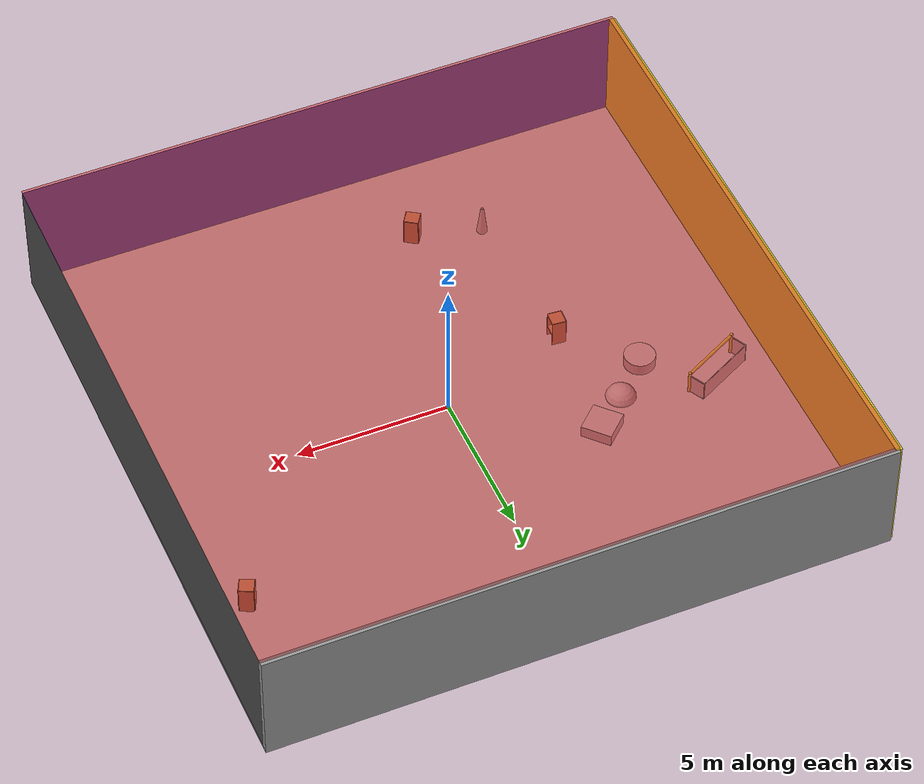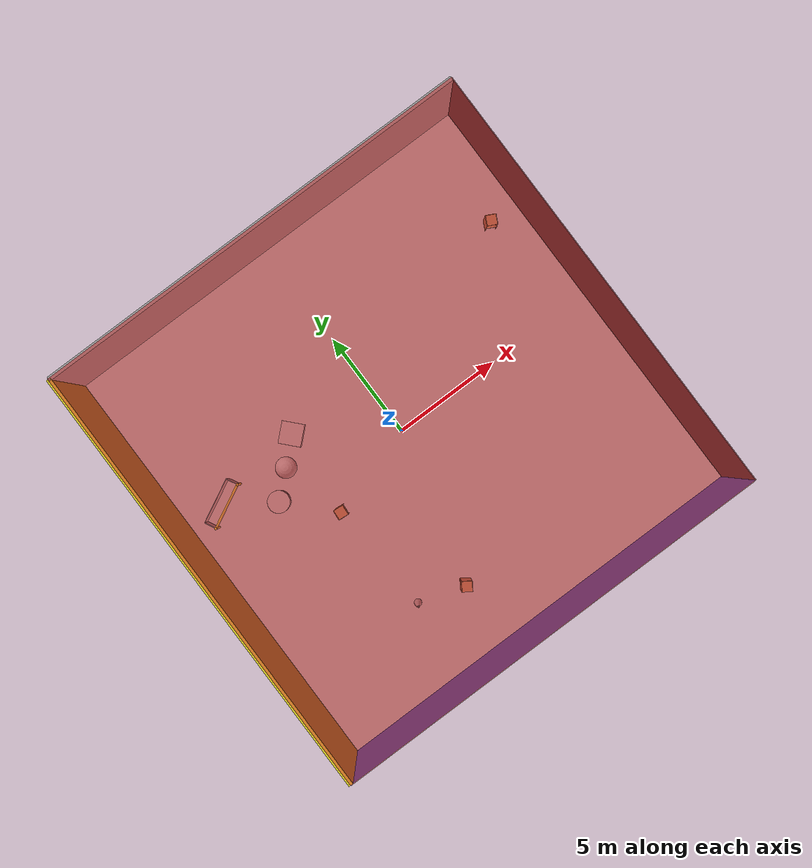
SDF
<sdf version="1.4">
 <world name="default">
  <physics type="ode">
   <max_step_size>0.001</max_step_size>
   <real_time_factor>1</real_time_factor>
   <real_time_update_rate>1000</real_time_update_rate>
   <gravity>0 0 -9.8</gravity>
  </physics>
  <scene><ambient>0.4 0.4 0.4 1</ambient><background>0.7 0.7 0.7 1</background><shadows>1</shadows></scene>
  <model name="Surrounding">
   <static>1</static>
   <link name="Ceiling">
    <collision name="Ceiling_Collision"><geometry><box><size>20 20 0.1</size></box></geometry></collision>
    <visual name="Ceiling_Visual">
     <geometry><box><size>20 20 0.1</size></box></geometry>
     <material>
      <script><uri>file://media/materials/scripts/gazebo.material</uri><name>Gazebo/RedTransparent</name></script>
     </material>
    </visual>
    <pose>0 0 4.05 0 0 0</pose>
   </link>
   <link name="Wall_South">
    <collision name="Wall_South_Collision">
     <geometry><box><size>20 0 4</size></box></geometry>
     <pose>0 0 2 0 -0 0</pose>
    </collision>
    <visual name="Wall_South_Visual">
     <pose>0 0 2 0 -0 0</pose>
     <geometry><box><size>20 0 4</size></box></geometry>
     <material>
      <script><uri>file://media/materials/scripts/gazebo.material</uri><name>Gazebo/BlueGlow</name></script>
     </material>
    </visual>
    <velocity_decay><linear>0</linear><angular>0</angular></velocity_decay>
    <pose>0 -10 0 0 -0 0</pose>
   </link>
   <link name="Wall_East">
    <collision name="Wall_21_Collision">
     <geometry><box><size>20 0 4</size></box></geometry>
     <pose>0 0 2 0 -0 0</pose>
    </collision>
    <visual name="Wall_21_Visual">
     <pose>0 0 2 0 -0 0</pose>
     <geometry><box><size>20 0 4</size></box></geometry>
     <material>
      <script><uri>file://media/materials/scripts/gazebo.material</uri><name>Gazebo/DarkGrey</name></script>
     </material>
    </visual>
    <velocity_decay><linear>0</linear><angular>0</angular></velocity_decay>
    <pose>10 0 0 0 -0 1.5708</pose>
   </link>
   <link name="Wall_North">
    <collision name="Wall_22_Collision">
     <geometry><box><size>20 0.2 4</size></box></geometry>
     <pose>0 0 2 0 -0 0</pose>
    </collision>
    <visual name="Wall_22_Visual">
     <pose>0 0 2 0 -0 0</pose>
     <geometry><box><size>20 0.2 4</size></box></geometry>
     <material>
      <script><uri>file://media/materials/scripts/gazebo.material</uri><name>Gazebo/GreyGradientSky</name></script>
     </material>
    </visual>
    <velocity_decay><linear>0</linear><angular>0</angular></velocity_decay>
    <pose>0 10 0 0 -0 0</pose>
   </link>
   <link name="Wall_West">
    <collision name="Wall_23_Collision">
     <geometry><box><size>20 0.2 4</size></box></geometry>
     <pose>0 0 2 0 -0 0</pose>
    </collision>
    <visual name="Wall_23_Visual">
     <pose>0 0 2 0 -0 0</pose>
     <geometry><box><size>20 0.2 4</size></box></geometry>
     <material>
      <script><uri>file://media/materials/scripts/gazebo.material</uri><name>Gazebo/Yellow</name></script>
     </material>
    </visual>
    <velocity_decay><linear>0</linear><angular>0</angular></velocity_decay>
    <pose>-10 0 0 0 0 -1.5708</pose>
   </link>
   <link name="Ground_link">
    <collision name="collision">
     <pose>0 0 .05 0 -0 0</pose>
     <geometry><box><size>20 20 0.1</size></box></geometry>
    </collision>
    <visual name="visual">
     <pose>0 0 .05 0 -0 0</pose>
     <geometry><box><size>20 20 0.1</size></box></geometry>
     <material>
      <script><uri>file://media/materials/scripts/gazebo.material</uri><name>Gazebo/CloudySky</name></script>
     </material>
    </visual>
   </link>
   <static>1</static>
  </model>
  <spherical_coordinates>
   <surface_model>EARTH_WGS84</surface_model>
   <latitude_deg>0</latitude_deg>
   <longitude_deg>0</longitude_deg>
   <elevation>0</elevation>
   <heading_deg>0</heading_deg>
  </spherical_coordinates>
  <light name="lightball_0" type="diffuse">
   <diffuse>0.8 0.8 0.8 1</diffuse>
   <specular>0.2 0.2 0.2 1</specular>
   <attenuation>
    <range>100</range>
    <constant>0.7</constant>
    <linear>0.01</linear>
    <quadratic>0.001</quadratic>
   </attenuation>
   <direction>-0.5 0.1 -0.9</direction>
   <pose>-4.42573420969 -2.58332447224 0.933193934256 0 0 0</pose>
  </light>
  <light name="lightball_1" type="diffuse">
   <diffuse>0.8 0.8 0.8 1</diffuse>
   <specular>0.2 0.2 0.2 1</specular>
   <attenuation>
    <range>100</range>
    <constant>0.7</constant>
    <linear>0.01</linear>
    <quadratic>0.001</quadratic>
   </attenuation>
   <direction>-0.5 0.1 -0.9</direction>
   <pose>5.64536716819 -6.59838444778 2.12609640926 0 0 0</pose>
  </light>
  <light name="lightball_2" type="diffuse">
   <diffuse>0.8 0.8 0.8 1</diffuse>
   <specular>0.2 0.2 0.2 1</specular>
   <attenuation>
    <range>100</range>
    <constant>0.7</constant>
    <linear>0.01</linear>
    <quadratic>0.001</quadratic>
   </attenuation>
   <direction>-0.5 0.1 -0.9</direction>
   <pose>-4.18401473984 5.30725094333 1.11854161029 0 0 0</pose>
  </light>
  <light name="lightball_3" type="diffuse">
   <diffuse>0.8 0.8 0.8 1</diffuse>
   <specular>0.2 0.2 0.2 1</specular>
   <attenuation>
    <range>100</range>
    <constant>0.7</constant>
    <linear>0.01</linear>
    <quadratic>0.001</quadratic>
   </attenuation>
   <direction>-0.5 0.1 -0.9</direction>
   <pose>-6.09806733871 3.29135727715 3.84596925864 0 0 0</pose>
  </light>
  <light name="lightball_4" type="diffuse">
   <diffuse>0.8 0.8 0.8 1</diffuse>
   <specular>0.2 0.2 0.2 1</specular>
   <attenuation>
    <range>100</range>
    <constant>0.7</constant>
    <linear>0.01</linear>
    <quadratic>0.001</quadratic>
   </attenuation>
   <direction>-0.5 0.1 -0.9</direction>
   <pose>-8.56764870088 -0.0492427255694 2.83140518912 0 0 0</pose>
  </light>
  <light name="lightball_5" type="diffuse">
   <diffuse>0.8 0.8 0.8 1</diffuse>
   <specular>0.2 0.2 0.2 1</specular>
   <attenuation>
    <range>100</range>
    <constant>0.7</constant>
    <linear>0.01</linear>
    <quadratic>0.001</quadratic>
   </attenuation>
   <direction>-0.5 0.1 -0.9</direction>
   <pose>4.17002057996 1.33242370422 2.7853923668 0 0 0</pose>
  </light>
  <light name="lightball_6" type="diffuse">
   <diffuse>0.8 0.8 0.8 1</diffuse>
   <specular>0.2 0.2 0.2 1</specular>
   <attenuation>
    <range>100</range>
    <constant>0.7</constant>
    <linear>0.01</linear>
    <quadratic>0.001</quadratic>
   </attenuation>
   <direction>-0.5 0.1 -0.9</direction>
   <pose>3.09581940174 -6.53883873264 1.44379729418 0 0 0</pose>
  </light>
  <light name="lightball_7" type="diffuse">
   <diffuse>0.8 0.8 0.8 1</diffuse>
   <specular>0.2 0.2 0.2 1</specular>
   <attenuation>
    <range>100</range>
    <constant>0.7</constant>
    <linear>0.01</linear>
    <quadratic>0.001</quadratic>
   </attenuation>
   <direction>-0.5 0.1 -0.9</direction>
   <pose>-4.3343946451 -9.54210930521 1.47733185597 0 0 0</pose>
  </light>
  <light name="lightball_8" type="diffuse">
   <diffuse>0.8 0.8 0.8 1</diffuse>
   <specular>0.2 0.2 0.2 1</specular>
   <attenuation>
    <range>100</range>
    <constant>0.7</constant>
    <linear>0.01</linear>
    <quadratic>0.001</quadratic>
   </attenuation>
   <direction>-0.5 0.1 -0.9</direction>
   <pose>9.73303894715 -5.15567752874 3.23118503999 0 0 0</pose>
  </light>
  <light name="lightball_9" type="diffuse">
   <diffuse>0.8 0.8 0.8 1</diffuse>
   <specular>0.2 0.2 0.2 1</specular>
   <attenuation>
    <range>100</range>
    <constant>0.7</constant>
    <linear>0.01</linear>
    <quadratic>0.001</quadratic>
   </attenuation>
   <direction>-0.5 0.1 -0.9</direction>
   <pose>8.46348234239 4.65603416786 2.01965094323 0 0 0</pose>
  </light>
  <include>
   <uri>model://robocup_3Dsim_goal</uri>
   <pose>-7.96060693654 1.90323158118 0 0 0 2.04477060856</pose>
  </include>
  <include>
   <uri>model://construction_cone</uri>
   <pose>-3.92250451859 -6.42713061443 0 0 0 3.01595874261</pose>
  </include>
  <include><uri>model://cabinet</uri><pose>-4.17707407987 -1.24165707489 0 0 0 3.06388977001</pose></include>
  <include>
   <uri>model://textured_shapes</uri>
   <pose>-5.00648218375 1.7558540004 0 0 0 2.31670300375</pose>
  </include>
  <include><uri>model://cabinet</uri><pose>-1.76109385792 -7.00532894999 0 0 0 0.988053843293</pose></include>
  <include><uri>model://cabinet</uri><pose>8.52779958771 4.92247360567 0 0 0 1.11737648549</pose></include>
 </world>
</sdf>

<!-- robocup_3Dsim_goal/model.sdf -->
<sdf version="1.5">
  <model name="robocup_3d_goal">
    <static>true</static>
    <link name="left_post">
      <pose>0 1.05 0.45 0 0 0</pose>
      <collision name="collision">
        <geometry>
          <cylinder>
            <radius>0.05</radius>
            <length>0.9</length>
          </cylinder>
        </geometry>
      </collision>
      <visual name="visual">
        <geometry>
          <cylinder>
            <radius>0.05</radius>
            <length>0.9</length>
          </cylinder>
        </geometry>
        <material>
          <script>
            <uri>file://media/materials/scripts/gazebo.material</uri>
            <name>Gazebo/ZincYellow</name>
          </script>
        </material>
      </visual>
    </link>
    <link name="left_support_horiz_lower">
      <pose>0.30 1.05 0.01 0 0 0</pose>
      <collision name="collision">
        <geometry>
          <box>
            <size>0.50 0.02 0.02</size>
          </box>
        </geometry>
      </collision>
      <visual name="visual">
        <geometry>
          <box>
            <size>0.50 0.02 0.02</size>
          </box>
        </geometry>
        <material>
          <script>
            <uri>file://media/materials/scripts/gazebo.material</uri>
            <name>Gazebo/White</name>
          </script>
        </material>
      </visual>
    </link>
    <link name="left_support_horiz_upper">
      <pose>0.30 1.05 0.79 0 0 0</pose>
      <collision name="collision">
        <geometry>
          <box>
            <size>0.50 0.02 0.02</size>
          </box>
        </geometry>
      </collision>
      <visual name="visual">
        <geometry>
          <box>
            <size>0.50 0.02 0.02</size>
          </box>
        </geometry>
        <material>
          <script>
            <uri>file://media/materials/scripts/gazebo.material</uri>
            <name>Gazebo/White</name>
          </script>
        </material>
      </visual>
    </link>
    <link name="left_support_vertical">
      <pose>0.56 1.05 0.4 0 1.5708 0</pose>
      <collision name="collision">
        <geometry>
          <box>
            <size>0.80 0.02 0.02</size>
          </box>
        </geometry>
      </collision>
      <visual name="visual">
        <geometry>
          <box>
            <size>0.80 0.02 0.02</size>
          </box>
        </geometry>
        <material>
          <script>
            <uri>file://media/materials/scripts/gazebo.material</uri>
            <name>Gazebo/White</name>
          </script>
        </material>
      </visual>
    </link>
    <link name="right_support_horiz_lower">
      <pose>0.30 -1.05 0.01 0 0 0</pose>
      <collision name="collision">
        <geometry>
          <box>
            <size>0.50 0.02 0.02</size>
          </box>
        </geometry>
      </collision>
      <visual name="visual">
        <geometry>
          <box>
            <size>0.50 0.02 0.02</size>
          </box>
        </geometry>
        <material>
          <script>
            <uri>file://media/materials/scripts/gazebo.material</uri>
            <name>Gazebo/White</name>
          </script>
        </material>
      </visual>
    </link>
    <link name="right_support_horiz_upper">
      <pose>0.30 -1.05 0.79 0 0 0</pose>
      <collision name="collision">
        <geometry>
          <box>
            <size>0.50 0.02 0.02</size>
          </box>
        </geometry>
      </collision>
      <visual name="visual">
        <geometry>
          <box>
            <size>0.50 0.02 0.02</size>
          </box>
        </geometry>
        <material>
          <script>
            <uri>file://media/materials/scripts/gazebo.material</uri>
            <name>Gazebo/White</name>
          </script>
        </material>
      </visual>
    </link>
    <link name="right_support_vertical">
      <pose>0.56 -1.05 0.4 0 1.5708 0</pose>
      <collision name="collision">
        <geometry>
          <box>
            <size>0.80 0.02 0.02</size>
          </box>
        </geometry>
      </collision>
      <visual name="visual">
        <geometry>
          <box>
            <size>0.80 0.02 0.02</size>
          </box>
        </geometry>
        <material>
          <script>
            <uri>file://media/materials/scripts/gazebo.material</uri>
            <name>Gazebo/White</name>
          </script>
        </material>
      </visual>
    </link>
    <link name="center_support_horiz_lower">
      <pose>0.56 0 0.01 0 1.5708 0</pose>
      <collision name="collision">
        <geometry>
          <box>
            <size>0.02 2.08 0.02</size>
          </box>
        </geometry>
      </collision>
      <visual name="visual">
        <geometry>
          <box>
            <size>0.02 2.08 0.02</size>
          </box>
        </geometry>
        <material>
          <script>
            <uri>file://media/materials/scripts/gazebo.material</uri>
            <name>Gazebo/White</name>
          </script>
        </material>
      </visual>
    </link>
    <link name="center_support_horiz_upper">
      <pose>0.56 0 0.79 0 1.5708 0</pose>
      <collision name="collision">
        <geometry>
          <box>
            <size>0.02 2.08 0.02</size>
          </box>
        </geometry>
      </collision>
      <visual name="visual">
        <geometry>
          <box>
            <size>0.02 2.08 0.02</size>
          </box>
        </geometry>
        <material>
          <script>
            <uri>file://media/materials/scripts/gazebo.material</uri>
            <name>Gazebo/White</name>
          </script>
        </material>
      </visual>
    </link>
    <link name="right_post">
      <pose>0 -1.05 0.45 0 0 0</pose>
      <collision name="collision">
        <geometry>
          <cylinder>
            <radius>0.05</radius>
            <length>0.9</length>
          </cylinder>
        </geometry>
      </collision>
      <visual name="visual">
        <geometry>
          <cylinder>
            <radius>0.05</radius>
            <length>0.9</length>
          </cylinder>
        </geometry>
        <material>
          <script>
            <uri>file://media/materials/scripts/gazebo.material</uri>
            <name>Gazebo/ZincYellow</name>
          </script>
        </material>
      </visual>
    </link>
    <link name="crossbar">
      <pose>0 0 0.85 1.57 1.57 0</pose>
      <collision name="collision">
        <geometry>
          <cylinder>
            <radius>0.05</radius>
            <length>2.0</length>
          </cylinder>
        </geometry>
      </collision>
      <visual name="visual">
        <geometry>
          <cylinder>
            <radius>0.05</radius>
            <length>2.0</length>
          </cylinder>
        </geometry>
        <material>
          <script>
            <uri>file://media/materials/scripts/gazebo.material</uri>
            <name>Gazebo/ZincYellow</name>
          </script>
        </material>
      </visual>
    </link>
    <link name="center_net">
      <pose>0.56 0 0.40 0 0 0</pose>
      <collision name="collision">
        <geometry>
          <box>
            <size>0.01 2.1 0.80</size>
          </box>
        </geometry>
      </collision>
      <visual name="visual">
        <geometry>
          <box>
            <size>0.01 2.1 0.80</size>
          </box>
        </geometry>
        <material>
          <script>
            <uri>model://../model_source/models/robocup09_spl_field/materials/scripts/</uri>
            <uri>model://../model_source/models/robocup09_spl_field/materials/textures/</uri>
            <name>RoboCup/Net</name>
          </script>
        </material>
      </visual>
    </link>
    <link name="left_net">
      <pose>0.30 1.05 0.40 0 0 0</pose>
      <collision name="collision">
        <geometry>
          <box>
            <size>0.50 0.01 0.76</size>
          </box>
        </geometry>
      </collision>
      <visual name="visual">
        <geometry>
          <box>
            <size>0.50 0.01 0.76</size>
          </box>
        </geometry>
        <material>
          <script>
            <uri>model://../model_source/models/robocup09_spl_field/materials/scripts/</uri>
            <uri>model://../model_source/models/robocup09_spl_field/materials/textures/</uri>
            <name>RoboCup/Net</name>
          </script>
        </material>
      </visual>
    </link>
    <link name="right_net">
      <pose>0.30 -1.05 0.40 0 0 0</pose>
      <collision name="collision">
        <geometry>
          <box>
            <size>0.50 0.01 0.76</size>
          </box>
        </geometry>
      </collision>
      <visual name="visual">
        <geometry>
          <box>
            <size>0.50 0.01 0.76</size>
          </box>
        </geometry>
        <material>
          <script>
            <uri>model://../model_source/models/robocup09_spl_field/materials/scripts/</uri>
            <uri>model://../model_source/models/robocup09_spl_field/materials/textures/</uri>
            <name>RoboCup/Net</name>
          </script>
        </material>
      </visual>
    </link>
  </model>
</sdf>

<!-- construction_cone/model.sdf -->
<sdf version="1.5">
  <model name="Construction Cone">
    <link name="link">
      <collision name="collision">
        <geometry>
          <mesh>
            <scale>10 10 10</scale>
            <uri>file://isr-testbed/construction_cone/meshes/construction_cone.dae</uri>
          </mesh>
        </geometry>
      </collision>
      <visual name="visual">
        <geometry>
          <mesh>
            <scale>10 10 10</scale>
            <uri>file://isr-testbed/construction_cone/meshes/construction_cone.dae</uri>
          </mesh>
        </geometry>
      </visual>
    </link>
  </model>
</sdf>

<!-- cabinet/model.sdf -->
<sdf version="1.5">
  <model name="cabinet">
    <static>true</static>
    <link name="cabinet_bottom_plate">
      <inertial>
        <pose>0 0 -1 0 0 0</pose>
        <inertia>
          <ixx>2.050000</ixx>
          <ixy>0</ixy>
          <ixz>0</ixz>
          <iyy>2.050000</iyy>
          <iyz>0</iyz>
          <izz>2.050000</izz>
        </inertia>
        <mass>25.000000</mass>
      </inertial>
      <collision name="cabinet_bottom_plate_geom">
        <pose>0 0 0.010000 0 0 0</pose>
        <geometry>
          <box>
            <size>0.450000 0.450000 0.020000</size>
          </box>
        </geometry>
      </collision>
      <visual name="cabinet_bottom_plate_geom_visual">
        <pose>0 0 0.010000 0 0 0</pose>
        <geometry>
          <box>
            <size>0.450000 0.450000 0.020000</size>
          </box>
        </geometry>
        <material>
          <script>
            <uri>model://media/materials/scripts/gazebo.material</uri>
            <name>Gazebo/Wood</name>
          </script>
        </material>
      </visual>
      <collision name="cabinet_bottom_plate_geom_cabinet_back_plate">
        <pose>0.235000 0 0.510000 0 0 0</pose>
        <geometry>
          <box>
            <size>0.020000 0.450000 1.020000</size>
          </box>
        </geometry>
      </collision>
      <visual name="cabinet_bottom_plate_geom_cabinet_back_plate_visual">
        <pose>0.235000 0 0.510000 0 0 0</pose>
        <geometry>
          <box>
            <size>0.020000 0.450000 1.020000</size>
          </box>
        </geometry>
        <material>
          <script>
            <uri>model://media/materials/scripts/gazebo.material</uri>
            <name>Gazebo/Wood</name>
          </script>
        </material>
      </visual>
      <collision name="cabinet_bottom_plate_geom_cabinet_left_plate">
        <pose>0 0.235000 0.510000 0 0 0</pose>
        <geometry>
          <box>
            <size>0.450000 0.020000 1.020000</size>
          </box>
        </geometry>
      </collision>
      <visual name="cabinet_bottom_plate_geom_cabinet_left_plate_visual">
        <pose>0 0.235000 0.510000 0 0 0</pose>
        <geometry>
          <box>
            <size>0.450000 0.020000 1.020000</size>
          </box>
        </geometry>
        <material>
          <script>
            <uri>model://media/materials/scripts/gazebo.material</uri>
            <name>Gazebo/Wood</name>
          </script>
        </material>
      </visual>
      <collision name="cabinet_bottom_plate_geom_cabinet_middle_plate">
        <pose>0 0 0.510000 0 0 0</pose>
        <geometry>
          <box>
            <size>0.450000 0.450000 0.020000</size>
          </box>
        </geometry>
      </collision>
      <visual name="cabinet_bottom_plate_geom_cabinet_middle_plate_visual">
        <pose>0 0 0.510000 0 0 0</pose>
        <geometry>
          <box>
            <size>0.450000 0.450000 0.020000</size>
          </box>
        </geometry>
        <material>
          <script>
            <uri>model://media/materials/scripts/gazebo.material</uri>
            <name>Gazebo/Wood</name>
          </script>
        </material>
      </visual>
      <collision name="cabinet_bottom_plate_geom_cabinet_right_plate">
        <pose>0 -0.235000 0.510000 0 0 0</pose>
        <geometry>
          <box>
            <size>0.450000 0.020000 1.020000</size>
          </box>
        </geometry>
      </collision>
      <visual name="cabinet_bottom_plate_geom_cabinet_right_plate_visual">
        <pose>0 -0.235000 0.510000 0 0 0</pose>
        <geometry>
          <box>
            <size>0.450000 0.020000 1.020000</size>
          </box>
        </geometry>
        <material>
          <script>
            <uri>model://media/materials/scripts/gazebo.material</uri>
            <name>Gazebo/Wood</name>
          </script>
        </material>
      </visual>
      <collision name="cabinet_bottom_plate_geom_cabinet_top_plate">
        <pose>0 0 1.010000 0 0 0</pose>
        <geometry>
          <box>
            <size>0.450000 0.450000 0.020000</size>
          </box>
        </geometry>
      </collision>
      <visual name="cabinet_bottom_plate_geom_cabinet_top_plate_visual">
        <pose>0 0 1.010000 0 0 0</pose>
        <geometry>
          <box>
            <size>0.450000 0.450000 0.020000</size>
          </box>
        </geometry>
        <material>
          <script>
            <uri>model://media/materials/scripts/gazebo.material</uri>
            <name>Gazebo/Wood</name>
          </script>
        </material>
      </visual>
    </link>
  </model>
</sdf>

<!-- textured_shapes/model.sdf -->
<sdf version="1.6">
  <model name="textured_shapes">
    <pose>0 0 0.5 0 0 0</pose>
    <link name="box">
      <pose>0 -1.5 0 0 0 0</pose>
      <collision name="collision">
        <geometry>
          <box>
            <size>1 1 1</size>
          </box>
        </geometry>
      </collision>
      <visual name="visual">
        <geometry>
          <box>
            <size>1 1 1</size>
          </box>
        </geometry>
        <material>
          <script>
            <uri>model://../model_source/models/textured_shapes/materials/scripts</uri>
            <uri>model://../model_source/models/textured_shapes/materials/textures</uri>
            <name>TexturedShape/Squares</name>
          </script>
        </material>
      </visual>
    </link>
    <link name="sphere">
      <collision name="collision">
        <geometry>
          <sphere>
            <radius>0.5</radius>
          </sphere>
        </geometry>
      </collision>
      <visual name="visual">
        <geometry>
          <sphere>
            <radius>0.5</radius>
          </sphere>
        </geometry>
        <material>
          <script>
            <uri>model://../model_source/models/textured_shapes/materials/scripts</uri>
            <uri>model://../model_source/models/textured_shapes/materials/textures</uri>
            <name>TexturedShape/Squares</name>
          </script>
        </material>
      </visual>
    </link>
    <link name="cylinder">
      <pose>0 1.5 0 0 0 0</pose>
      <collision name="collision">
        <geometry>
          <cylinder>
            <radius>0.5</radius>
            <length>1</length>
          </cylinder>
        </geometry>
      </collision>
      <visual name="visual">
        <geometry>
          <cylinder>
            <radius>0.5</radius>
            <length>1</length>
          </cylinder>
        </geometry>
        <material>
          <script>
            <uri>model://../model_source/models/textured_shapes/materials/scripts</uri>
            <uri>model://../model_source/models/textured_shapes/materials/textures</uri>
            <name>TexturedShape/Squares</name>
          </script>
        </material>
      </visual>
    </link>
  </model>
</sdf>
